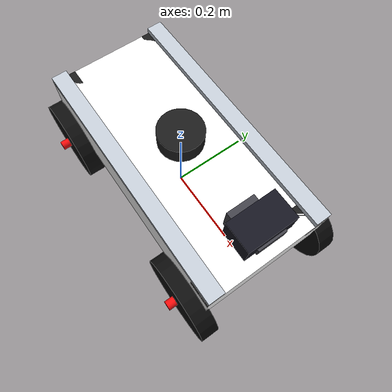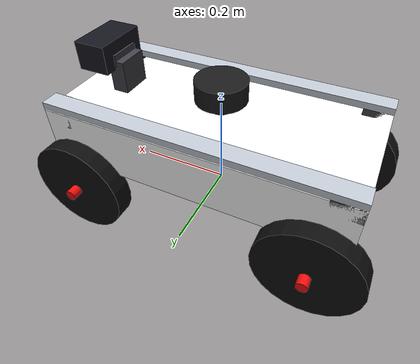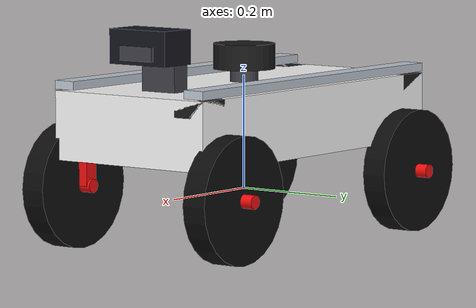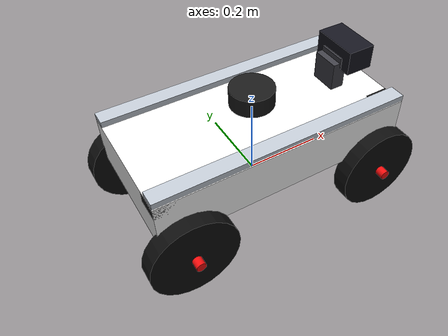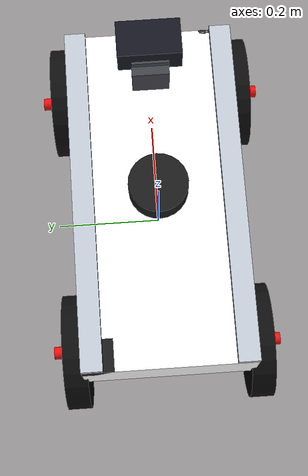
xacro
<?xml version="1.0"?>
<robot name="mycar" xmlns:xacro="http://www.ros.org/wiki/xacro">

    <!-- 参数定义区 -->
    <xacro:property name="base_length" value="0.65"/>
    <xacro:property name="base_width" value="0.32"/>
    <xacro:property name="base_height" value="0.12"/>
    <xacro:property name="base_link_z_offset" value="0.13"/>
    <xacro:property name="base_mass" value="3.5"/>

    <xacro:property name="rail_width" value="0.04"/>
    <xacro:property name="rail_height" value="0.015"/>
    <xacro:property name="rail_z_offset" value="0.07"/>

    <xacro:property name="bumper_size" value="0.06 0.06 0.03"/>

    <xacro:property name="wheel_radius" value="0.11"/>
    <xacro:property name="wheel_length" value="0.045"/>
    <xacro:property name="wheel_y_offset" value="0.175"/>
    <xacro:property name="wheel_x_offset_front" value="0.26"/>
    <xacro:property name="wheel_x_offset_rear" value="-0.26"/>
    <xacro:property name="wheel_z_offset" value="-0.11"/>
    <xacro:property name="wheel_mass" value="0.35"/>

    <xacro:property name="spring_length" value="0.09"/>
    <xacro:property name="spring_radius" value="0.012"/>
    <!-- 底盘下表面到轮心转轴的悬挂连接尺寸 -->
    <xacro:property name="suspension_width" value="0.025"/>
    <xacro:property name="suspension_height" value="${-wheel_z_offset - base_height/2}"/>
    <xacro:property name="suspension_z" value="${(wheel_z_offset - base_height/2)/2}"/>
    <xacro:property name="suspension_y" value="${base_width/2 - suspension_width/2}"/>

    <!-- 新增：为 move.xacro 提供 base_radius -->
    <xacro:property name="base_radius" value="${wheel_y_offset}"/>

    <!-- 材质颜色宏 -->
    <xacro:macro name="baselink_color">
        <material name="baselink_color">
            <color rgba="0.98 0.98 0.98 1"/>
        </material>
    </xacro:macro>
    <xacro:macro name="wheel_color">
        <material name="wheel_color">
            <color rgba="0.05 0.05 0.05 1"/>
        </material>
    </xacro:macro>
    <xacro:macro name="spring_color">
        <material name="spring_color">
            <color rgba="0.95 0.05 0.05 1"/>
        </material>
    </xacro:macro>
    <xacro:macro name="rail_color">
        <material name="rail_color">
            <color rgba="0.75 0.78 0.82 1"/>
        </material>
    </xacro:macro>
    <xacro:macro name="bumper_color">
        <material name="bumper_color">
            <color rgba="0.1 0.1 0.1 1"/>
        </material>
    </xacro:macro>

    <!-- 长方体惯性宏 -->
    <xacro:macro name="box_inertial" params="mass x y z">
        <inertial>
            <mass value="${mass}"/>
            <origin xyz="0 0 0" rpy="0 0 0"/>
            <inertia ixx="${mass*(y*y+z*z)/12}" ixy="0" ixz="0"
                     iyy="${mass*(x*x+z*z)/12}" iyz="0"
                     izz="${mass*(x*x+y*y)/12}"/>
        </inertial>
    </xacro:macro>

    <!-- 圆柱体惯性宏 -->
    <xacro:macro name="cylinder_inertial" params="mass radius length">
        <inertial>
            <mass value="${mass}"/>
            <origin xyz="0 0 0" rpy="0 0 0"/>
            <inertia ixx="${mass*(3*radius*radius+length*length)/12}" ixy="0" ixz="0"
                     iyy="${mass*(3*radius*radius+length*length)/12}" iyz="0"
                     izz="${mass*radius*radius/2}"/>
        </inertial>
    </xacro:macro>

    <!-- 车轮通用宏（含传动器） -->
    <xacro:macro name="wheel_link" params="name prefix joint_name">
        <link name="${name}">
            <visual>
                <geometry>
                    <cylinder radius="${wheel_radius}" length="${wheel_length}"/>
                </geometry>
                <origin xyz="0 0 0" rpy="1.5708 0 0"/>
                <xacro:wheel_color/>
            </visual>
            <collision>
                <geometry>
                    <cylinder radius="${wheel_radius}" length="${wheel_length}"/>
                </geometry>
                <origin xyz="0 0 0" rpy="1.5708 0 0"/>
            </collision>
            <xacro:cylinder_inertial mass="${wheel_mass}" radius="${wheel_radius}" length="${wheel_length}"/>
        </link>

        <transmission name="${joint_name}_trans">
            <type>transmission_interface/SimpleTransmission</type>
            <joint name="${joint_name}">
                <hardwareInterface>hardware_interface/VelocityJointInterface</hardwareInterface>
            </joint>
            <actuator name="${joint_name}_motor">
                <hardwareInterface>hardware_interface/VelocityJointInterface</hardwareInterface>
                <mechanicalReduction>1</mechanicalReduction>
            </actuator>
        </transmission>
    </xacro:macro>

    <!-- 地面基准连杆 -->
    <link name="base_footprint">
        <visual>
            <geometry>
                <sphere radius="0.001"/>
            </geometry>
        </visual>
    </link>

    <!-- 底盘主体连杆 -->
    <link name="base_link">
        <visual name="body_main">
            <geometry>
                <box size="${base_length} ${base_width} ${base_height}"/>
            </geometry>
            <origin xyz="0 0 0" rpy="0 0 0"/>
            <xacro:baselink_color/>
        </visual>
        <visual name="rail_left">
            <geometry>
                <box size="${base_length} ${rail_width} ${rail_height}"/>
            </geometry>
            <origin xyz="0 ${base_width/2 - rail_width/2} ${rail_z_offset}"/>
            <xacro:rail_color/>
        </visual>
        <visual name="rail_right">
            <geometry>
                <box size="${base_length} ${rail_width} ${rail_height}"/>
            </geometry>
            <origin xyz="0 -${base_width/2 - rail_width/2} ${rail_z_offset}"/>
            <xacro:rail_color/>
        </visual>
        <visual name="bumper_fl">
            <geometry><box size="${bumper_size}"/></geometry>
            <origin xyz="${base_length/2-0.03} ${base_width/2-0.03} ${base_height/2-0.015}"/>
            <xacro:bumper_color/>
        </visual>
        <visual name="bumper_fr">
            <geometry><box size="${bumper_size}"/></geometry>
            <origin xyz="${base_length/2-0.03} -${base_width/2-0.03} ${base_height/2-0.015}"/>
            <xacro:bumper_color/>
        </visual>
        <visual name="bumper_rl">
            <geometry><box size="${bumper_size}"/></geometry>
            <origin xyz="-${base_length/2-0.03} ${base_width/2-0.03} ${base_height/2-0.015}"/>
            <xacro:bumper_color/>
        </visual>
        <visual name="bumper_rr">
            <geometry><box size="${bumper_size}"/></geometry>
            <origin xyz="-${base_length/2-0.03} -${base_width/2-0.03} ${base_height/2-0.015}"/>
            <xacro:bumper_color/>
        </visual>
        <visual name="spring_fl">
            <geometry><cylinder radius="${spring_radius}" length="${spring_length}"/></geometry>
            <origin xyz="${wheel_x_offset_front} ${wheel_y_offset} ${wheel_z_offset}" rpy="1.5708 0 0"/>
            <xacro:spring_color/>
        </visual>
        <visual name="spring_fr">
            <geometry><cylinder radius="${spring_radius}" length="${spring_length}"/></geometry>
            <origin xyz="${wheel_x_offset_front} -${wheel_y_offset} ${wheel_z_offset}" rpy="1.5708 0 0"/>
            <xacro:spring_color/>
        </visual>
        <visual name="spring_rl">
            <geometry><cylinder radius="${spring_radius}" length="${spring_length}"/></geometry>
            <origin xyz="${wheel_x_offset_rear} ${wheel_y_offset} ${wheel_z_offset}" rpy="1.5708 0 0"/>
            <xacro:spring_color/>
        </visual>
        <visual name="spring_rr">
            <geometry><cylinder radius="${spring_radius}" length="${spring_length}"/></geometry>
            <origin xyz="${wheel_x_offset_rear} -${wheel_y_offset} ${wheel_z_offset}" rpy="1.5708 0 0"/>
            <xacro:spring_color/>
        </visual>
        <!-- 四个悬挂支架把底盘与轮心转轴连接起来 -->
        <visual name="suspension_fl">
            <geometry><box size="${suspension_width} ${suspension_width} ${suspension_height}"/></geometry>
            <origin xyz="${wheel_x_offset_front} ${suspension_y} ${suspension_z}"/>
            <xacro:spring_color/>
        </visual>
        <visual name="suspension_fr">
            <geometry><box size="${suspension_width} ${suspension_width} ${suspension_height}"/></geometry>
            <origin xyz="${wheel_x_offset_front} -${suspension_y} ${suspension_z}"/>
            <xacro:spring_color/>
        </visual>
        <visual name="suspension_rl">
            <geometry><box size="${suspension_width} ${suspension_width} ${suspension_height}"/></geometry>
            <origin xyz="${wheel_x_offset_rear} ${suspension_y} ${suspension_z}"/>
            <xacro:spring_color/>
        </visual>
        <visual name="suspension_rr">
            <geometry><box size="${suspension_width} ${suspension_width} ${suspension_height}"/></geometry>
            <origin xyz="${wheel_x_offset_rear} -${suspension_y} ${suspension_z}"/>
            <xacro:spring_color/>
        </visual>
        <!-- 雷达安装柱：连接底盘上表面与车顶雷达 -->
        <visual name="car_laser_mount">
            <geometry><cylinder radius="0.025" length="0.035"/></geometry>
            <origin xyz="0 0 ${base_height/2 + 0.0175}"/>
            <material name="sensor_mount_color"><color rgba="0.25 0.25 0.28 1"/></material>
        </visual>
        <!-- RGB-D相机支架：连接底盘与前向相机 -->
        <visual name="car_camera_mount_vertical">
            <geometry><box size="0.035 0.07 0.07"/></geometry>
            <origin xyz="${base_length/2 - 0.10} 0 ${base_height/2 + 0.035}"/>
            <material name="sensor_mount_color"/>
        </visual>
        <visual name="car_camera_mount_horizontal">
            <geometry><box size="0.08 0.07 0.025"/></geometry>
            <origin xyz="${base_length/2 - 0.06} 0 ${base_height/2 + 0.07}"/>
            <material name="sensor_mount_color"/>
        </visual>
        <collision>
            <geometry>
                <box size="${base_length} ${base_width} ${base_height}"/>
            </geometry>
            <origin xyz="0 0 0" rpy="0 0 0"/>
        </collision>
        <xacro:box_inertial mass="${base_mass}" x="${base_length}" y="${base_width}" z="${base_height}"/>
    </link>

    <joint name="link2footprint" type="fixed">
        <parent link="base_footprint"/>
        <child link="base_link"/>
        <origin xyz="0 0 ${base_link_z_offset}"/>
    </joint>

    <!-- 四轮驱动关节 -->
    <xacro:wheel_link name="left_wheel" prefix="left" joint_name="left2_link"/>
    <joint name="left2_link" type="continuous">
        <parent link="base_link"/>
        <child link="left_wheel"/>
        <origin xyz="${wheel_x_offset_front} ${wheel_y_offset} ${wheel_z_offset}"/>
        <axis xyz="0 1 0"/>
    </joint>

    <xacro:wheel_link name="right_wheel" prefix="right" joint_name="right2_link"/>
    <joint name="right2_link" type="continuous">
        <parent link="base_link"/>
        <child link="right_wheel"/>
        <origin xyz="${wheel_x_offset_front} -${wheel_y_offset} ${wheel_z_offset}"/>
        <axis xyz="0 1 0"/>
    </joint>

    <xacro:wheel_link name="left_wheel1" prefix="left1" joint_name="left12_link"/>
    <joint name="left12_link" type="continuous">
        <parent link="base_link"/>
        <child link="left_wheel1"/>
        <origin xyz="${wheel_x_offset_rear} ${wheel_y_offset} ${wheel_z_offset}"/>
        <axis xyz="0 1 0"/>
    </joint>

    <xacro:wheel_link name="right_wheel1" prefix="right1" joint_name="right12_link"/>
    <joint name="right12_link" type="continuous">
        <parent link="base_link"/>
        <child link="right_wheel1"/>
        <origin xyz="${wheel_x_offset_rear} -${wheel_y_offset} ${wheel_z_offset}"/>
        <axis xyz="0 1 0"/>
    </joint>

    <!-- 车顶二维激光雷达 -->
    <link name="car_laser_link">
        <visual>
            <geometry><cylinder radius="0.055" length="0.045"/></geometry>
            <material name="car_laser_color"><color rgba="0.1 0.1 0.1 1"/></material>
        </visual>
        <collision>
            <geometry><cylinder radius="0.055" length="0.045"/></geometry>
        </collision>
        <xacro:cylinder_inertial mass="0.12" radius="0.055" length="0.045"/>
    </link>
    <joint name="car_laser_joint" type="fixed">
        <parent link="base_link"/>
        <child link="car_laser_link"/>
        <origin xyz="0 0 ${base_height/2 + 0.045}"/>
    </joint>

    <!-- 小车前向 RGB-D 相机 -->
    <link name="car_rgbd_link">
        <visual>
            <geometry><box size="0.07 0.12 0.06"/></geometry>
            <material name="car_camera_color"><color rgba="0.08 0.08 0.12 1"/></material>
        </visual>
        <collision><geometry><box size="0.07 0.12 0.06"/></geometry></collision>
        <xacro:box_inertial mass="0.18" x="0.07" y="0.12" z="0.06"/>
    </link>
    <joint name="car_rgbd_joint" type="fixed">
        <parent link="base_link"/>
        <child link="car_rgbd_link"/>
        <origin xyz="${base_length/2 - 0.06} 0 ${base_height/2 + 0.08}"/>
    </joint>

    <!-- ========== Gazebo 配置 ========== -->
    <gazebo>
        <plugin name="skid_steer_drive_controller" filename="libgazebo_ros_skid_steer_drive.so">
            <robotNamespace>/car</robotNamespace>
            <leftFrontJoint>left2_link</leftFrontJoint>
            <rightFrontJoint>right2_link</rightFrontJoint>
            <leftRearJoint>left12_link</leftRearJoint>
            <rightRearJoint>right12_link</rightRearJoint>
            <wheelDiameter>${2 * wheel_radius}</wheelDiameter>
            <wheelSeparation>${2 * wheel_y_offset}</wheelSeparation>
            <torque>20</torque>
            <commandTopic>/cmd_vel</commandTopic>
            <odometryTopic>/robot0/odom</odometryTopic>
            <odometryFrame>odom</odometryFrame>
            <robotBaseFrame>base_footprint</robotBaseFrame>
            <broadcastTF>true</broadcastTF>
            <updateRate>50.0</updateRate>
        </plugin>
    </gazebo>

    <gazebo reference="car_laser_link">
        <material>Gazebo/Black</material>
        <sensor name="car_laser" type="ray">
            <pose>0 0 0 0 0 0</pose>
            <always_on>true</always_on>
            <visualize>true</visualize>
            <update_rate>15</update_rate>
            <ray>
                <scan>
                    <horizontal>
                        <samples>360</samples>
                        <resolution>1</resolution>
                        <min_angle>-3.14159</min_angle>
                        <max_angle>3.14159</max_angle>
                    </horizontal>
                </scan>
                <range>
                    <min>0.001</min>
                    <max>12.0</max>
                    <resolution>0.01</resolution>
                </range>
                <noise><type>gaussian</type><mean>0</mean><stddev>0.01</stddev></noise>
            </ray>
            <plugin name="car_laser_controller" filename="libgazebo_ros_laser.so">
                <topicName>/car/scan</topicName>
                <frameName>car_laser_link</frameName>
            </plugin>
        </sensor>
    </gazebo>

    <gazebo reference="car_rgbd_link">
        <material>Gazebo/Blue</material>
        <sensor type="depth" name="car_rgbd_sensor">
            <pose>0 0 0 0 0 0</pose>
            <always_on>true</always_on>
            <visualize>true</visualize>
            <update_rate>30.0</update_rate>
            <camera>
                <horizontal_fov>1.3962634</horizontal_fov>
                <image>
                    <width>640</width>
                    <height>480</height>
                    <format>R8G8B8</format>
                </image>
                <clip>
                    <near>0.02</near>
                    <far>300</far>
                </clip>
                <noise>
                    <type>gaussian</type>
                    <mean>0.0</mean>
                    <stddev>0.007</stddev>
                </noise>
            </camera>
            <plugin name="car_rgbd_controller" filename="libgazebo_ros_safe_rgbd.so">
                <alwaysOn>true</alwaysOn>
                <updateRate>30.0</updateRate>
                <cameraName>/robot0/camera</cameraName>
                <imageTopicName>color/image_raw</imageTopicName>
                <cameraInfoTopicName>color/camera_info</cameraInfoTopicName>
                <depthImageTopicName>aligned_depth_to_color/image_raw</depthImageTopicName>
                <depthImageCameraInfoTopicName>depth/camera_info</depthImageCameraInfoTopicName>
                <pointCloudTopicName>depth/points</pointCloudTopicName>
                <frameName>camera_optical_frame</frameName>
                <pointCloudCutoff>0.08</pointCloudCutoff>
                <pointCloudCutoffMax>10.0</pointCloudCutoffMax>
            </plugin>
        </sensor>
    </gazebo>

    <link name="camera_optical_frame"/>
    <joint name="camera_optical_joint" type="fixed">
        <parent link="car_rgbd_link"/>
        <child link="camera_optical_frame"/>
        <origin xyz="0 0 0" rpy="-1.57079632679 0 -1.57079632679"/>
    </joint>

    <!-- 各连杆材质 -->
    <gazebo reference="base_link">
        <material>Gazebo/White</material>
    </gazebo>
    <gazebo reference="left_wheel">
        <material>Gazebo/DarkGrey</material>
        <mu1>1.4</mu1>
        <mu2>1.4</mu2>
        <kp>1000000.0</kp>
        <kd>120.0</kd>
        <minDepth>0.001</minDepth>
        <maxVel>2.0</maxVel>
    </gazebo>
    <gazebo reference="right_wheel">
        <material>Gazebo/DarkGrey</material>
        <mu1>1.4</mu1>
        <mu2>1.4</mu2>
        <kp>1000000.0</kp>
        <kd>120.0</kd>
        <minDepth>0.001</minDepth>
        <maxVel>2.0</maxVel>
    </gazebo>
    <gazebo reference="left_wheel1">
        <material>Gazebo/DarkGrey</material>
        <mu1>1.4</mu1>
        <mu2>1.4</mu2>
        <kp>1000000.0</kp>
        <kd>120.0</kd>
        <minDepth>0.001</minDepth>
        <maxVel>2.0</maxVel>
    </gazebo>
    <gazebo reference="right_wheel1">
        <material>Gazebo/DarkGrey</material>
        <mu1>1.4</mu1>
        <mu2>1.4</mu2>
        <kp>1000000.0</kp>
        <kd>120.0</kd>
        <minDepth>0.001</minDepth>
        <maxVel>2.0</maxVel>
    </gazebo>

</robot>
